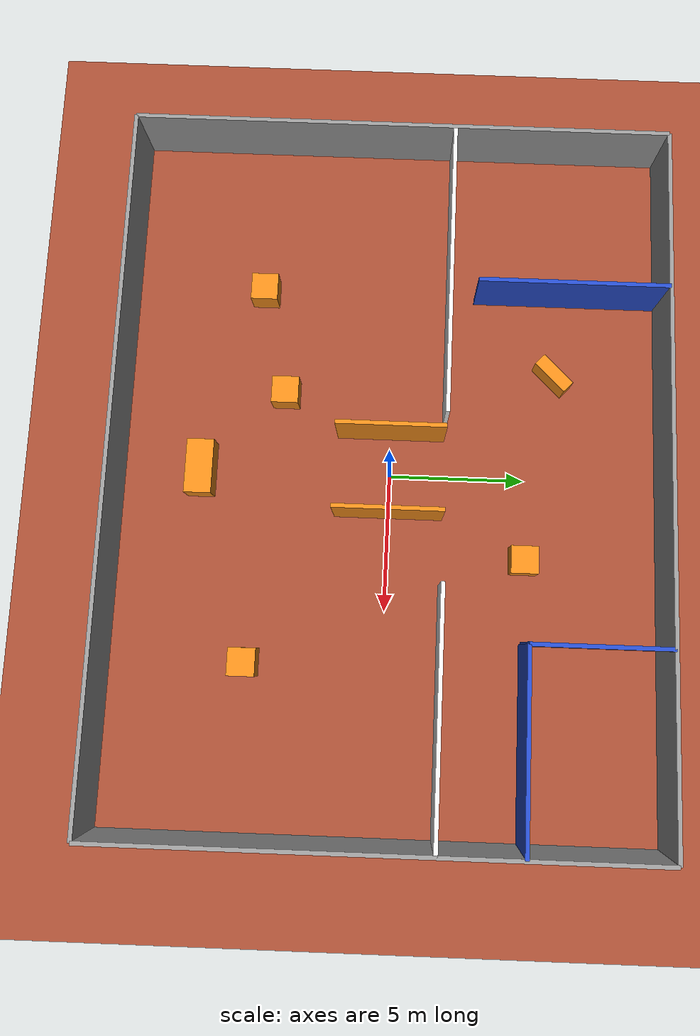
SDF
<sdf version="1.7">
 <world name="advanced_demo">
  <light name="sun" type="directional">
   <cast_shadows>0</cast_shadows>
   <pose>0 0 15 0 -0 0</pose>
   <diffuse>0.9 0.9 0.9 1</diffuse>
   <specular>0.3 0.3 0.3 1</specular>
   <attenuation>
    <range>1000</range>
    <constant>0.9</constant>
    <linear>0.01</linear>
    <quadratic>0.001</quadratic>
   </attenuation>
   <direction>-0.5 0.2 -0.9</direction>
  </light>
  <model name="ground_plane">
   <static>1</static>
   <link name="link">
    <collision name="collision">
     <geometry><plane><normal>0 0 1</normal><size>200 200</size></plane></geometry>
    </collision>
    <visual name="visual">
     <cast_shadows>0</cast_shadows>
     <geometry><plane><normal>0 0 1</normal><size>200 200</size></plane></geometry>
     <material>
      <script><uri>file://media/materials/scripts/gazebo.material</uri><name>Gazebo/Bricks</name></script>
     </material>
    </visual>
   </link>
  </model>
  <gravity>0 0 -9.8</gravity>
  <physics type="ode">
   <max_step_size>0.001</max_step_size>
   <real_time_factor>1</real_time_factor>
   <real_time_update_rate>1000</real_time_update_rate>
  </physics>
  <scene><ambient>0.45 0.45 0.45 1</ambient><background>0.6 0.7 0.8 1</background><shadows>0</shadows></scene>
  <model name="wall_south">
   <static>1</static>
   <pose>0 -10 1.25 0 0 0</pose>
   <link name="link">
    <collision name="col"><geometry><box><size>26 0.15 2.5</size></box></geometry></collision>
    <visual name="vis">
     <geometry><box><size>26 0.15 2.5</size></box></geometry>
     <material>
      <script><uri>file://media/materials/scripts/gazebo.material</uri><name>Gazebo/Grey</name></script>
      <ambient>0.8 0.8 0.8 1</ambient>
     </material>
    </visual>
   </link>
  </model>
  <model name="wall_north">
   <static>1</static>
   <pose>0 10 1.25 0 0 0</pose>
   <link name="link">
    <collision name="col"><geometry><box><size>26 0.15 2.5</size></box></geometry></collision>
    <visual name="vis">
     <geometry><box><size>26 0.15 2.5</size></box></geometry>
     <material>
      <script><uri>file://media/materials/scripts/gazebo.material</uri><name>Gazebo/Grey</name></script>
      <ambient>0.8 0.8 0.8 1</ambient>
     </material>
    </visual>
   </link>
  </model>
  <model name="wall_west">
   <static>1</static>
   <pose>-13 0 1.25 0 0 0</pose>
   <link name="link">
    <collision name="col"><geometry><box><size>0.15 20 2.5</size></box></geometry></collision>
    <visual name="vis">
     <geometry><box><size>0.15 20 2.5</size></box></geometry>
     <material>
      <script><uri>file://media/materials/scripts/gazebo.material</uri><name>Gazebo/Grey</name></script>
      <ambient>0.8 0.8 0.8 1</ambient>
     </material>
    </visual>
   </link>
  </model>
  <model name="wall_east">
   <static>1</static>
   <pose>13 0 1.25 0 0 0</pose>
   <link name="link">
    <collision name="col"><geometry><box><size>0.15 20 2.5</size></box></geometry></collision>
    <visual name="vis">
     <geometry><box><size>0.15 20 2.5</size></box></geometry>
     <material>
      <script><uri>file://media/materials/scripts/gazebo.material</uri><name>Gazebo/Grey</name></script>
      <ambient>0.8 0.8 0.8 1</ambient>
     </material>
    </visual>
   </link>
  </model>
  <model name="wall_ew_west_segment">
   <static>1</static>
   <pose>-7.5 2 1.25 0 0 0</pose>
   <link name="link">
    <collision name="col"><geometry><box><size>11 0.15 2.5</size></box></geometry></collision>
    <visual name="vis">
     <geometry><box><size>11 0.15 2.5</size></box></geometry>
     <material>
      <script><uri>file://media/materials/scripts/gazebo.material</uri><name>Gazebo/White</name></script>
     </material>
    </visual>
   </link>
  </model>
  <model name="wall_ew_east_segment">
   <static>1</static>
   <pose>8.5 2 1.25 0 0 0</pose>
   <link name="link">
    <collision name="col"><geometry><box><size>9 0.15 2.5</size></box></geometry></collision>
    <visual name="vis">
     <geometry><box><size>9 0.15 2.5</size></box></geometry>
     <material>
      <script><uri>file://media/materials/scripts/gazebo.material</uri><name>Gazebo/White</name></script>
     </material>
    </visual>
   </link>
  </model>
  <model name="wall_nw_east">
   <static>1</static>
   <pose>-7 6.5 1.25 0 0 0</pose>
   <link name="link">
    <collision name="col"><geometry><box><size>0.15 7 2.5</size></box></geometry></collision>
    <visual name="vis">
     <geometry><box><size>0.15 7 2.5</size></box></geometry>
     <material>
      <script><uri>file://media/materials/scripts/gazebo.material</uri><name>Gazebo/Blue</name></script>
     </material>
    </visual>
   </link>
  </model>
  <model name="wall_ne_south">
   <static>1</static>
   <pose>9.5 5 1.25 0 0 0</pose>
   <link name="link">
    <collision name="col"><geometry><box><size>7 0.15 2.5</size></box></geometry></collision>
    <visual name="vis">
     <geometry><box><size>7 0.15 2.5</size></box></geometry>
     <material>
      <script><uri>file://media/materials/scripts/gazebo.material</uri><name>Gazebo/Blue</name></script>
     </material>
    </visual>
   </link>
  </model>
  <model name="wall_ne_west">
   <static>1</static>
   <pose>6 7.5 1.25 0 0 0</pose>
   <link name="link">
    <collision name="col"><geometry><box><size>0.15 5 2.5</size></box></geometry></collision>
    <visual name="vis">
     <geometry><box><size>0.15 5 2.5</size></box></geometry>
     <material>
      <script><uri>file://media/materials/scripts/gazebo.material</uri><name>Gazebo/Blue</name></script>
     </material>
    </visual>
   </link>
  </model>
  <model name="wall_corridor_west">
   <static>1</static>
   <pose>-1.5 0 1.25 0 0 0</pose>
   <link name="link">
    <collision name="col"><geometry><box><size>0.15 4 2.5</size></box></geometry></collision>
    <visual name="vis">
     <geometry><box><size>0.15 4 2.5</size></box></geometry>
     <material>
      <script><uri>file://media/materials/scripts/gazebo.material</uri><name>Gazebo/Orange</name></script>
     </material>
    </visual>
   </link>
  </model>
  <model name="wall_corridor_east">
   <static>1</static>
   <pose>1.5 0 1.25 0 0 0</pose>
   <link name="link">
    <collision name="col"><geometry><box><size>0.15 4 2.5</size></box></geometry></collision>
    <visual name="vis">
     <geometry><box><size>0.15 4 2.5</size></box></geometry>
     <material>
      <script><uri>file://media/materials/scripts/gazebo.material</uri><name>Gazebo/Orange</name></script>
     </material>
    </visual>
   </link>
  </model>
  <model name="box_1">
   <static>1</static>
   <pose>3 5 0.5 0 0 0</pose>
   <link name="link">
    <collision name="col"><geometry><box><size>1 1 1</size></box></geometry></collision>
    <visual name="vis">
     <geometry><box><size>1 1 1</size></box></geometry>
     <material>
      <script><uri>file://media/materials/scripts/gazebo.material</uri><name>Gazebo/Orange</name></script>
     </material>
    </visual>
   </link>
  </model>
  <model name="box_2">
   <static>1</static>
   <pose>-3 -4 0.5 0 0 0</pose>
   <link name="link">
    <collision name="col"><geometry><box><size>1 1 1</size></box></geometry></collision>
    <visual name="vis">
     <geometry><box><size>1 1 1</size></box></geometry>
     <material>
      <script><uri>file://media/materials/scripts/gazebo.material</uri><name>Gazebo/Orange</name></script>
     </material>
    </visual>
   </link>
  </model>
  <model name="box_3">
   <static>1</static>
   <pose>7 -5 0.5 0 0 0</pose>
   <link name="link">
    <collision name="col"><geometry><box><size>1 1 1</size></box></geometry></collision>
    <visual name="vis">
     <geometry><box><size>1 1 1</size></box></geometry>
     <material>
      <script><uri>file://media/materials/scripts/gazebo.material</uri><name>Gazebo/Orange</name></script>
     </material>
    </visual>
   </link>
  </model>
  <model name="box_4">
   <static>1</static>
   <pose>-7 -5 0.5 0 0 0</pose>
   <link name="link">
    <collision name="col"><geometry><box><size>1 1 1</size></box></geometry></collision>
    <visual name="vis">
     <geometry><box><size>1 1 1</size></box></geometry>
     <material>
      <script><uri>file://media/materials/scripts/gazebo.material</uri><name>Gazebo/Orange</name></script>
     </material>
    </visual>
   </link>
  </model>
  <model name="box_5">
   <static>1</static>
   <pose>0 -7 0.5 0 0 0</pose>
   <link name="link">
    <collision name="col"><geometry><box><size>2 1 1</size></box></geometry></collision>
    <visual name="vis">
     <geometry><box><size>2 1 1</size></box></geometry>
     <material>
      <script><uri>file://media/materials/scripts/gazebo.material</uri><name>Gazebo/Orange</name></script>
     </material>
    </visual>
   </link>
  </model>
  <model name="box_6">
   <static>1</static>
   <pose>-4 6 0.5 0 0 0.785</pose>
   <link name="link">
    <collision name="col"><geometry><box><size>1.5 0.5 1</size></box></geometry></collision>
    <visual name="vis">
     <geometry><box><size>1.5 0.5 1</size></box></geometry>
     <material>
      <script><uri>file://media/materials/scripts/gazebo.material</uri><name>Gazebo/Orange</name></script>
     </material>
    </visual>
   </link>
  </model>
 </world>
</sdf>
